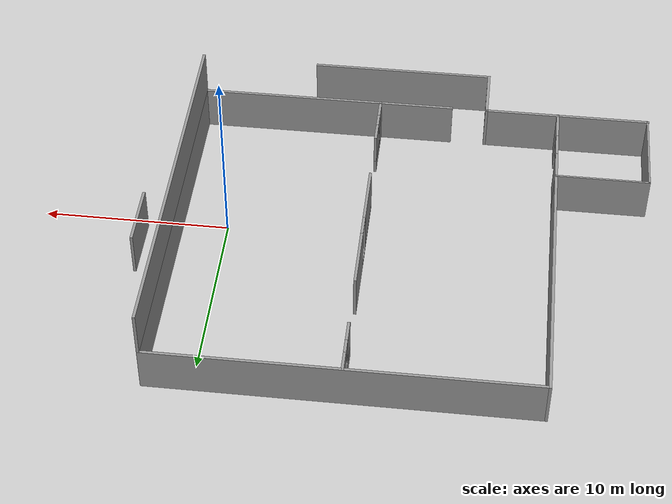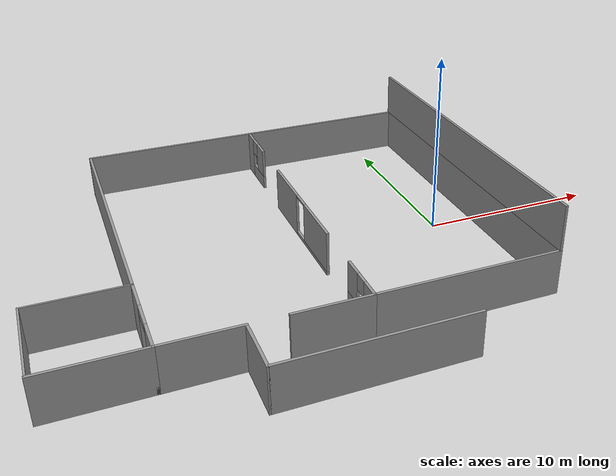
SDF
<sdf version="1.7">
 <model name="smart_house_3_working">
  <link name="Wall_11">
   <pose>-20.0155 -3.51553 0 0 -0 3.14159</pose>
   <inertial>
    <inertia><ixx>1</ixx><ixy>0</ixy><ixz>0</ixz><iyy>1</iyy><iyz>0</iyz><izz>1</izz></inertia>
    <mass>1</mass>
   </inertial>
   <visual name="Wall_11_Visual">
    <pose>0 0 1.25 0 -0 0</pose>
    <geometry><box><size>5.1 0.1 2.5</size></box></geometry>
    <material>
     <script><uri>file://media/materials/scripts/gazebo.material</uri><name>Gazebo/Grey</name></script>
     <ambient>1 1 1 1</ambient>
     <shader type="pixel"/>
    </material>
    <meta><layer>0</layer></meta>
   </visual>
   <collision name="Wall_11_Collision">
    <pose>0 0 1.25 0 -0 0</pose>
    <geometry><box><size>5.1 0.1 2.5</size></box></geometry>
    <surface>
     <friction>
      <ode><mu>1</mu><mu2>1</mu2><fdir1>0 0 0</fdir1><slip1>0</slip1><slip2>0</slip2></ode>
      <torsional>
       <coefficient>1</coefficient>
       <patch_radius>0</patch_radius>
       <surface_radius>0</surface_radius>
       <use_patch_radius>1</use_patch_radius>
       <ode><slip>0</slip></ode>
      </torsional>
     </friction>
     <bounce><restitution_coefficient>0</restitution_coefficient><threshold>1e+06</threshold></bounce>
     <contact>
      <collide_without_contact>0</collide_without_contact>
      <collide_without_contact_bitmask>1</collide_without_contact_bitmask>
      <collide_bitmask>1</collide_bitmask>
      <ode>
       <soft_cfm>0</soft_cfm>
       <soft_erp>0.2</soft_erp>
       <kp>1e+13</kp>
       <kd>1</kd>
       <max_vel>0.01</max_vel>
       <min_depth>0</min_depth>
      </ode>
      <bullet>
       <split_impulse>1</split_impulse>
       <split_impulse_penetration_threshold>-0.01</split_impulse_penetration_threshold>
       <soft_cfm>0</soft_cfm>
       <soft_erp>0.2</soft_erp>
       <kp>1e+13</kp>
       <kd>1</kd>
      </bullet>
     </contact>
    </surface>
   </collision>
  </link>
  <link name="Wall_12">
   <pose>-22.5155 -6.01553 0 0 0 -1.5708</pose>
   <inertial>
    <inertia><ixx>1</ixx><ixy>0</ixy><ixz>0</ixz><iyy>1</iyy><iyz>0</iyz><izz>1</izz></inertia>
    <mass>1</mass>
   </inertial>
   <visual name="Wall_12_Visual">
    <pose>0 0 1.25 0 -0 0</pose>
    <geometry><box><size>5.1 0.1 2.5</size></box></geometry>
    <material>
     <script><uri>file://media/materials/scripts/gazebo.material</uri><name>Gazebo/Grey</name></script>
     <ambient>1 1 1 1</ambient>
     <shader type="pixel"/>
    </material>
    <meta><layer>0</layer></meta>
   </visual>
   <collision name="Wall_12_Collision">
    <pose>0 0 1.25 0 -0 0</pose>
    <geometry><box><size>5.1 0.1 2.5</size></box></geometry>
    <surface>
     <friction>
      <ode><mu>1</mu><mu2>1</mu2><fdir1>0 0 0</fdir1><slip1>0</slip1><slip2>0</slip2></ode>
      <torsional>
       <coefficient>1</coefficient>
       <patch_radius>0</patch_radius>
       <surface_radius>0</surface_radius>
       <use_patch_radius>1</use_patch_radius>
       <ode><slip>0</slip></ode>
      </torsional>
     </friction>
     <bounce><restitution_coefficient>0</restitution_coefficient><threshold>1e+06</threshold></bounce>
     <contact>
      <collide_without_contact>0</collide_without_contact>
      <collide_without_contact_bitmask>1</collide_without_contact_bitmask>
      <collide_bitmask>1</collide_bitmask>
      <ode>
       <soft_cfm>0</soft_cfm>
       <soft_erp>0.2</soft_erp>
       <kp>1e+13</kp>
       <kd>1</kd>
       <max_vel>0.01</max_vel>
       <min_depth>0</min_depth>
      </ode>
      <bullet>
       <split_impulse>1</split_impulse>
       <split_impulse_penetration_threshold>-0.01</split_impulse_penetration_threshold>
       <soft_cfm>0</soft_cfm>
       <soft_erp>0.2</soft_erp>
       <kp>1e+13</kp>
       <kd>1</kd>
      </bullet>
     </contact>
    </surface>
   </collision>
  </link>
  <link name="Wall_14">
   <pose>2.48447 1.48447 0 0 -0 1.5708</pose>
   <inertial>
    <inertia><ixx>1</ixx><ixy>0</ixy><ixz>0</ixz><iyy>1</iyy><iyz>0</iyz><izz>1</izz></inertia>
    <mass>1</mass>
   </inertial>
   <visual name="Wall_14_Visual">
    <pose>0 0 1.25 0 -0 0</pose>
    <geometry><box><size>20.15 0.15 2.5</size></box></geometry>
    <material>
     <script><uri>file://media/materials/scripts/gazebo.material</uri><name>Gazebo/Grey</name></script>
     <ambient>1 1 1 1</ambient>
     <shader type="pixel"/>
    </material>
    <meta><layer>0</layer></meta>
   </visual>
   <collision name="Wall_14_Collision">
    <pose>0 0 1.25 0 -0 0</pose>
    <geometry><box><size>20.15 0.15 2.5</size></box></geometry>
    <surface>
     <friction>
      <ode><mu>1</mu><mu2>1</mu2><fdir1>0 0 0</fdir1><slip1>0</slip1><slip2>0</slip2></ode>
      <torsional>
       <coefficient>1</coefficient>
       <patch_radius>0</patch_radius>
       <surface_radius>0</surface_radius>
       <use_patch_radius>1</use_patch_radius>
       <ode><slip>0</slip></ode>
      </torsional>
     </friction>
     <bounce><restitution_coefficient>0</restitution_coefficient><threshold>1e+06</threshold></bounce>
     <contact>
      <collide_without_contact>0</collide_without_contact>
      <collide_without_contact_bitmask>1</collide_without_contact_bitmask>
      <collide_bitmask>1</collide_bitmask>
      <ode>
       <soft_cfm>0</soft_cfm>
       <soft_erp>0.2</soft_erp>
       <kp>1e+13</kp>
       <kd>1</kd>
       <max_vel>0.01</max_vel>
       <min_depth>0</min_depth>
      </ode>
      <bullet>
       <split_impulse>1</split_impulse>
       <split_impulse_penetration_threshold>-0.01</split_impulse_penetration_threshold>
       <soft_cfm>0</soft_cfm>
       <soft_erp>0.2</soft_erp>
       <kp>1e+13</kp>
       <kd>1</kd>
      </bullet>
     </contact>
    </surface>
   </collision>
  </link>
  <link name="Wall_15">
   <pose>-7.51553 11.4845 0 0 -0 3.14159</pose>
   <inertial>
    <inertia><ixx>1</ixx><ixy>0</ixy><ixz>0</ixz><iyy>1</iyy><iyz>0</iyz><izz>1</izz></inertia>
    <mass>1</mass>
   </inertial>
   <visual name="Wall_15_Visual">
    <pose>0 0 1.25 0 -0 0</pose>
    <geometry><box><size>20.15 0.15 2.5</size></box></geometry>
    <material>
     <script><uri>file://media/materials/scripts/gazebo.material</uri><name>Gazebo/Grey</name></script>
     <ambient>1 1 1 1</ambient>
     <shader type="pixel"/>
    </material>
    <meta><layer>0</layer></meta>
   </visual>
   <collision name="Wall_15_Collision">
    <pose>0 0 1.25 0 -0 0</pose>
    <geometry><box><size>20.15 0.15 2.5</size></box></geometry>
    <surface>
     <friction>
      <ode><mu>1</mu><mu2>1</mu2><fdir1>0 0 0</fdir1><slip1>0</slip1><slip2>0</slip2></ode>
      <torsional>
       <coefficient>1</coefficient>
       <patch_radius>0</patch_radius>
       <surface_radius>0</surface_radius>
       <use_patch_radius>1</use_patch_radius>
       <ode><slip>0</slip></ode>
      </torsional>
     </friction>
     <bounce><restitution_coefficient>0</restitution_coefficient><threshold>1e+06</threshold></bounce>
     <contact>
      <collide_without_contact>0</collide_without_contact>
      <collide_without_contact_bitmask>1</collide_without_contact_bitmask>
      <collide_bitmask>1</collide_bitmask>
      <ode>
       <soft_cfm>0</soft_cfm>
       <soft_erp>0.2</soft_erp>
       <kp>1e+13</kp>
       <kd>1</kd>
       <max_vel>0.01</max_vel>
       <min_depth>0</min_depth>
      </ode>
      <bullet>
       <split_impulse>1</split_impulse>
       <split_impulse_penetration_threshold>-0.01</split_impulse_penetration_threshold>
       <soft_cfm>0</soft_cfm>
       <soft_erp>0.2</soft_erp>
       <kp>1e+13</kp>
       <kd>1</kd>
      </bullet>
     </contact>
    </surface>
   </collision>
  </link>
  <link name="Wall_16">
   <pose>-17.5155 3.98447 0 0 0 -1.5708</pose>
   <inertial>
    <inertia><ixx>1</ixx><ixy>0</ixy><ixz>0</ixz><iyy>1</iyy><iyz>0</iyz><izz>1</izz></inertia>
    <mass>1</mass>
   </inertial>
   <visual name="Wall_16_Visual">
    <pose>0 0 1.25 0 -0 0</pose>
    <geometry><box><size>15.1503 0.15 2.5</size></box></geometry>
    <material>
     <script><uri>file://media/materials/scripts/gazebo.material</uri><name>Gazebo/Grey</name></script>
     <ambient>1 1 1 1</ambient>
     <shader type="pixel"/>
    </material>
    <meta><layer>0</layer></meta>
   </visual>
   <collision name="Wall_16_Collision">
    <pose>0 0 1.25 0 -0 0</pose>
    <geometry><box><size>15.1503 0.15 2.5</size></box></geometry>
    <surface>
     <friction>
      <ode><mu>1</mu><mu2>1</mu2><fdir1>0 0 0</fdir1><slip1>0</slip1><slip2>0</slip2></ode>
      <torsional>
       <coefficient>1</coefficient>
       <patch_radius>0</patch_radius>
       <surface_radius>0</surface_radius>
       <use_patch_radius>1</use_patch_radius>
       <ode><slip>0</slip></ode>
      </torsional>
     </friction>
     <bounce><restitution_coefficient>0</restitution_coefficient><threshold>1e+06</threshold></bounce>
     <contact>
      <collide_without_contact>0</collide_without_contact>
      <collide_without_contact_bitmask>1</collide_without_contact_bitmask>
      <collide_bitmask>1</collide_bitmask>
      <ode>
       <soft_cfm>0</soft_cfm>
       <soft_erp>0.2</soft_erp>
       <kp>1e+13</kp>
       <kd>1</kd>
       <max_vel>0.01</max_vel>
       <min_depth>0</min_depth>
      </ode>
      <bullet>
       <split_impulse>1</split_impulse>
       <split_impulse_penetration_threshold>-0.01</split_impulse_penetration_threshold>
       <soft_cfm>0</soft_cfm>
       <soft_erp>0.2</soft_erp>
       <kp>1e+13</kp>
       <kd>1</kd>
      </bullet>
     </contact>
    </surface>
   </collision>
  </link>
  <link name="Wall_234">
   <pose>2.48447 1.48447 2.5 0 -0 1.5708</pose>
   <inertial>
    <inertia><ixx>1</ixx><ixy>0</ixy><ixz>0</ixz><iyy>1</iyy><iyz>0</iyz><izz>1</izz></inertia>
    <mass>1</mass>
   </inertial>
   <visual name="Wall_234_Visual">
    <pose>0 0 1.25 0 -0 0</pose>
    <geometry><box><size>20.15 0.15 2.5</size></box></geometry>
    <material>
     <script><uri>file://media/materials/scripts/gazebo.material</uri><name>Gazebo/Grey</name></script>
     <ambient>1 1 1 1</ambient>
     <shader type="pixel"/>
    </material>
    <meta><layer>2</layer></meta>
   </visual>
   <collision name="Wall_234_Collision">
    <pose>0 0 1.25 0 -0 0</pose>
    <geometry><box><size>20.15 0.15 2.5</size></box></geometry>
    <surface>
     <friction>
      <ode><mu>1</mu><mu2>1</mu2><fdir1>0 0 0</fdir1><slip1>0</slip1><slip2>0</slip2></ode>
      <torsional>
       <coefficient>1</coefficient>
       <patch_radius>0</patch_radius>
       <surface_radius>0</surface_radius>
       <use_patch_radius>1</use_patch_radius>
       <ode><slip>0</slip></ode>
      </torsional>
     </friction>
     <bounce><restitution_coefficient>0</restitution_coefficient><threshold>1e+06</threshold></bounce>
     <contact>
      <collide_without_contact>0</collide_without_contact>
      <collide_without_contact_bitmask>1</collide_without_contact_bitmask>
      <collide_bitmask>1</collide_bitmask>
      <ode>
       <soft_cfm>0</soft_cfm>
       <soft_erp>0.2</soft_erp>
       <kp>1e+13</kp>
       <kd>1</kd>
       <max_vel>0.01</max_vel>
       <min_depth>0</min_depth>
      </ode>
      <bullet>
       <split_impulse>1</split_impulse>
       <split_impulse_penetration_threshold>-0.01</split_impulse_penetration_threshold>
       <soft_cfm>0</soft_cfm>
       <soft_erp>0.2</soft_erp>
       <kp>1e+13</kp>
       <kd>1</kd>
      </bullet>
     </contact>
    </surface>
   </collision>
  </link>
  <link name="Wall_24">
   <pose>-17.5155 -6.01553 0 0 0 -1.5708</pose>
   <inertial>
    <inertia><ixx>1</ixx><ixy>0</ixy><ixz>0</ixz><iyy>1</iyy><iyz>0</iyz><izz>1</izz></inertia>
    <mass>1</mass>
   </inertial>
   <visual name="Wall_24_Visual_0">
    <pose>-1.63657 0 1.25 0 -0 0</pose>
    <geometry><box><size>1.87687 0.15 2.5</size></box></geometry>
    <material>
     <script><uri>file://media/materials/scripts/gazebo.material</uri><name>Gazebo/Grey</name></script>
     <ambient>1 1 1 1</ambient>
     <shader type="pixel"/>
    </material>
    <meta><layer>0</layer></meta>
   </visual>
   <visual name="Wall_24_Visual_2">
    <pose>0.051866 0 2.25 0 -0 0</pose>
    <geometry><box><size>1.5 0.15 0.5</size></box></geometry>
    <material>
     <script><uri>file://media/materials/scripts/gazebo.material</uri><name>Gazebo/Grey</name></script>
     <ambient>1 1 1 1</ambient>
     <shader type="pixel"/>
    </material>
    <meta><layer>0</layer></meta>
   </visual>
   <visual name="Wall_24_Visual_1">
    <pose>1.68843 0 1.25 0 -0 0</pose>
    <geometry><box><size>1.77313 0.15 2.5</size></box></geometry>
    <material>
     <script><uri>file://media/materials/scripts/gazebo.material</uri><name>Gazebo/Grey</name></script>
     <ambient>1 1 1 1</ambient>
     <shader type="pixel"/>
    </material>
    <meta><layer>0</layer></meta>
   </visual>
   <collision name="Wall_24_Collision_2">
    <pose>0.051866 0 2.25 0 -0 0</pose>
    <geometry><box><size>1.5 0.15 0.5</size></box></geometry>
    <surface>
     <friction>
      <ode><mu>1</mu><mu2>1</mu2><fdir1>0 0 0</fdir1><slip1>0</slip1><slip2>0</slip2></ode>
      <torsional>
       <coefficient>1</coefficient>
       <patch_radius>0</patch_radius>
       <surface_radius>0</surface_radius>
       <use_patch_radius>1</use_patch_radius>
       <ode><slip>0</slip></ode>
      </torsional>
     </friction>
     <bounce><restitution_coefficient>0</restitution_coefficient><threshold>1e+06</threshold></bounce>
     <contact>
      <collide_without_contact>0</collide_without_contact>
      <collide_without_contact_bitmask>1</collide_without_contact_bitmask>
      <collide_bitmask>1</collide_bitmask>
      <ode>
       <soft_cfm>0</soft_cfm>
       <soft_erp>0.2</soft_erp>
       <kp>1e+13</kp>
       <kd>1</kd>
       <max_vel>0.01</max_vel>
       <min_depth>0</min_depth>
      </ode>
      <bullet>
       <split_impulse>1</split_impulse>
       <split_impulse_penetration_threshold>-0.01</split_impulse_penetration_threshold>
       <soft_cfm>0</soft_cfm>
       <soft_erp>0.2</soft_erp>
       <kp>1e+13</kp>
       <kd>1</kd>
      </bullet>
     </contact>
    </surface>
   </collision>
   <collision name="Wall_24_Collision_1">
    <pose>1.68843 0 1.25 0 -0 0</pose>
    <geometry><box><size>1.77313 0.15 2.5</size></box></geometry>
    <surface>
     <friction>
      <ode><mu>1</mu><mu2>1</mu2><fdir1>0 0 0</fdir1><slip1>0</slip1><slip2>0</slip2></ode>
      <torsional>
       <coefficient>1</coefficient>
       <patch_radius>0</patch_radius>
       <surface_radius>0</surface_radius>
       <use_patch_radius>1</use_patch_radius>
       <ode><slip>0</slip></ode>
      </torsional>
     </friction>
     <bounce><restitution_coefficient>0</restitution_coefficient><threshold>1e+06</threshold></bounce>
     <contact>
      <collide_without_contact>0</collide_without_contact>
      <collide_without_contact_bitmask>1</collide_without_contact_bitmask>
      <collide_bitmask>1</collide_bitmask>
      <ode>
       <soft_cfm>0</soft_cfm>
       <soft_erp>0.2</soft_erp>
       <kp>1e+13</kp>
       <kd>1</kd>
       <max_vel>0.01</max_vel>
       <min_depth>0</min_depth>
      </ode>
      <bullet>
       <split_impulse>1</split_impulse>
       <split_impulse_penetration_threshold>-0.01</split_impulse_penetration_threshold>
       <soft_cfm>0</soft_cfm>
       <soft_erp>0.2</soft_erp>
       <kp>1e+13</kp>
       <kd>1</kd>
      </bullet>
     </contact>
    </surface>
   </collision>
   <collision name="Wall_24_Collision_0">
    <pose>-1.63657 0 1.25 0 -0 0</pose>
    <geometry><box><size>1.87687 0.15 2.5</size></box></geometry>
    <surface>
     <friction>
      <ode><mu>1</mu><mu2>1</mu2><fdir1>0 0 0</fdir1><slip1>0</slip1><slip2>0</slip2></ode>
      <torsional>
       <coefficient>1</coefficient>
       <patch_radius>0</patch_radius>
       <surface_radius>0</surface_radius>
       <use_patch_radius>1</use_patch_radius>
       <ode><slip>0</slip></ode>
      </torsional>
     </friction>
     <bounce><restitution_coefficient>0</restitution_coefficient><threshold>1e+06</threshold></bounce>
     <contact>
      <collide_without_contact>0</collide_without_contact>
      <collide_without_contact_bitmask>1</collide_without_contact_bitmask>
      <collide_bitmask>1</collide_bitmask>
      <ode>
       <soft_cfm>0</soft_cfm>
       <soft_erp>0.2</soft_erp>
       <kp>1e+13</kp>
       <kd>1</kd>
       <max_vel>0.01</max_vel>
       <min_depth>0</min_depth>
      </ode>
      <bullet>
       <split_impulse>1</split_impulse>
       <split_impulse_penetration_threshold>-0.01</split_impulse_penetration_threshold>
       <soft_cfm>0</soft_cfm>
       <soft_erp>0.2</soft_erp>
       <kp>1e+13</kp>
       <kd>1</kd>
      </bullet>
     </contact>
    </surface>
   </collision>
  </link>
  <link name="Wall_40">
   <pose>-20.0155 -8.51553 0 0 -0 0</pose>
   <inertial>
    <inertia><ixx>1</ixx><ixy>0</ixy><ixz>0</ixz><iyy>1</iyy><iyz>0</iyz><izz>1</izz></inertia>
    <mass>1</mass>
   </inertial>
   <visual name="Wall_40_Visual">
    <pose>0 0 1.25 0 -0 0</pose>
    <geometry><box><size>5.15 0.15 2.5</size></box></geometry>
    <material>
     <script><uri>file://media/materials/scripts/gazebo.material</uri><name>Gazebo/Grey</name></script>
     <ambient>1 1 1 1</ambient>
     <shader type="pixel"/>
    </material>
    <meta><layer>0</layer></meta>
   </visual>
   <collision name="Wall_40_Collision">
    <pose>0 0 1.25 0 -0 0</pose>
    <geometry><box><size>5.15 0.15 2.5</size></box></geometry>
    <surface>
     <friction>
      <ode><mu>1</mu><mu2>1</mu2><fdir1>0 0 0</fdir1><slip1>0</slip1><slip2>0</slip2></ode>
      <torsional>
       <coefficient>1</coefficient>
       <patch_radius>0</patch_radius>
       <surface_radius>0</surface_radius>
       <use_patch_radius>1</use_patch_radius>
       <ode><slip>0</slip></ode>
      </torsional>
     </friction>
     <bounce><restitution_coefficient>0</restitution_coefficient><threshold>1e+06</threshold></bounce>
     <contact>
      <collide_without_contact>0</collide_without_contact>
      <collide_without_contact_bitmask>1</collide_without_contact_bitmask>
      <collide_bitmask>1</collide_bitmask>
      <ode>
       <soft_cfm>0</soft_cfm>
       <soft_erp>0.2</soft_erp>
       <kp>1e+13</kp>
       <kd>1</kd>
       <max_vel>0.01</max_vel>
       <min_depth>0</min_depth>
      </ode>
      <bullet>
       <split_impulse>1</split_impulse>
       <split_impulse_penetration_threshold>-0.01</split_impulse_penetration_threshold>
       <soft_cfm>0</soft_cfm>
       <soft_erp>0.2</soft_erp>
       <kp>1e+13</kp>
       <kd>1</kd>
      </bullet>
     </contact>
    </surface>
   </collision>
  </link>
  <link name="Wall_42">
   <pose>-2.51553 -8.51553 0 0 -0 3.14159</pose>
   <inertial>
    <inertia><ixx>1</ixx><ixy>0</ixy><ixz>0</ixz><iyy>1</iyy><iyz>0</iyz><izz>1</izz></inertia>
    <mass>1</mass>
   </inertial>
   <visual name="Wall_42_Visual">
    <pose>0 0 1.25 0 -0 0</pose>
    <geometry><box><size>10.15 0.15 2.5</size></box></geometry>
    <material>
     <script><uri>file://media/materials/scripts/gazebo.material</uri><name>Gazebo/Grey</name></script>
     <ambient>1 1 1 1</ambient>
     <shader type="pixel"/>
    </material>
    <meta><layer>0</layer></meta>
   </visual>
   <collision name="Wall_42_Collision">
    <pose>0 0 1.25 0 -0 0</pose>
    <geometry><box><size>10.15 0.15 2.5</size></box></geometry>
    <surface>
     <friction>
      <ode><mu>1</mu><mu2>1</mu2><fdir1>0 0 0</fdir1><slip1>0</slip1><slip2>0</slip2></ode>
      <torsional>
       <coefficient>1</coefficient>
       <patch_radius>0</patch_radius>
       <surface_radius>0</surface_radius>
       <use_patch_radius>1</use_patch_radius>
       <ode><slip>0</slip></ode>
      </torsional>
     </friction>
     <bounce><restitution_coefficient>0</restitution_coefficient><threshold>1e+06</threshold></bounce>
     <contact>
      <collide_without_contact>0</collide_without_contact>
      <collide_without_contact_bitmask>1</collide_without_contact_bitmask>
      <collide_bitmask>1</collide_bitmask>
      <ode>
       <soft_cfm>0</soft_cfm>
       <soft_erp>0.2</soft_erp>
       <kp>1e+13</kp>
       <kd>1</kd>
       <max_vel>0.01</max_vel>
       <min_depth>0</min_depth>
      </ode>
      <bullet>
       <split_impulse>1</split_impulse>
       <split_impulse_penetration_threshold>-0.01</split_impulse_penetration_threshold>
       <soft_cfm>0</soft_cfm>
       <soft_erp>0.2</soft_erp>
       <kp>1e+13</kp>
       <kd>1</kd>
      </bullet>
     </contact>
    </surface>
   </collision>
  </link>
  <link name="Wall_44">
   <pose>-15.5155 -8.51553 0 0 -0 0</pose>
   <inertial>
    <inertia><ixx>1</ixx><ixy>0</ixy><ixz>0</ixz><iyy>1</iyy><iyz>0</iyz><izz>1</izz></inertia>
    <mass>1</mass>
   </inertial>
   <visual name="Wall_44_Visual">
    <pose>0 0 1.25 0 -0 0</pose>
    <geometry><box><size>4.15 0.15 2.5</size></box></geometry>
    <material>
     <script><uri>file://media/materials/scripts/gazebo.material</uri><name>Gazebo/Grey</name></script>
     <ambient>1 1 1 1</ambient>
     <shader type="pixel"/>
    </material>
    <meta><layer>0</layer></meta>
   </visual>
   <collision name="Wall_44_Collision">
    <pose>0 0 1.25 0 -0 0</pose>
    <geometry><box><size>4.15 0.15 2.5</size></box></geometry>
    <surface>
     <friction>
      <ode><mu>1</mu><mu2>1</mu2><fdir1>0 0 0</fdir1><slip1>0</slip1><slip2>0</slip2></ode>
      <torsional>
       <coefficient>1</coefficient>
       <patch_radius>0</patch_radius>
       <surface_radius>0</surface_radius>
       <use_patch_radius>1</use_patch_radius>
       <ode><slip>0</slip></ode>
      </torsional>
     </friction>
     <bounce><restitution_coefficient>0</restitution_coefficient><threshold>1e+06</threshold></bounce>
     <contact>
      <collide_without_contact>0</collide_without_contact>
      <collide_without_contact_bitmask>1</collide_without_contact_bitmask>
      <collide_bitmask>1</collide_bitmask>
      <ode>
       <soft_cfm>0</soft_cfm>
       <soft_erp>0.2</soft_erp>
       <kp>1e+13</kp>
       <kd>1</kd>
       <max_vel>0.01</max_vel>
       <min_depth>0</min_depth>
      </ode>
      <bullet>
       <split_impulse>1</split_impulse>
       <split_impulse_penetration_threshold>-0.01</split_impulse_penetration_threshold>
       <soft_cfm>0</soft_cfm>
       <soft_erp>0.2</soft_erp>
       <kp>1e+13</kp>
       <kd>1</kd>
      </bullet>
     </contact>
    </surface>
   </collision>
  </link>
  <link name="Wall_46">
   <pose>-9.51553 -8.51553 0 0 -0 3.14159</pose>
   <inertial>
    <inertia><ixx>1</ixx><ixy>0</ixy><ixz>0</ixz><iyy>1</iyy><iyz>0</iyz><izz>1</izz></inertia>
    <mass>1</mass>
   </inertial>
   <visual name="Wall_46_Visual">
    <pose>0 0 1.25 0 -0 0</pose>
    <geometry><box><size>4.15 0.15 2.5</size></box></geometry>
    <material>
     <script><uri>file://media/materials/scripts/gazebo.material</uri><name>Gazebo/Grey</name></script>
     <ambient>1 1 1 1</ambient>
     <shader type="pixel"/>
    </material>
    <meta><layer>0</layer></meta>
   </visual>
   <collision name="Wall_46_Collision">
    <pose>0 0 1.25 0 -0 0</pose>
    <geometry><box><size>4.15 0.15 2.5</size></box></geometry>
    <surface>
     <friction>
      <ode><mu>1</mu><mu2>1</mu2><fdir1>0 0 0</fdir1><slip1>0</slip1><slip2>0</slip2></ode>
      <torsional>
       <coefficient>1</coefficient>
       <patch_radius>0</patch_radius>
       <surface_radius>0</surface_radius>
       <use_patch_radius>1</use_patch_radius>
       <ode><slip>0</slip></ode>
      </torsional>
     </friction>
     <bounce><restitution_coefficient>0</restitution_coefficient><threshold>1e+06</threshold></bounce>
     <contact>
      <collide_without_contact>0</collide_without_contact>
      <collide_without_contact_bitmask>1</collide_without_contact_bitmask>
      <collide_bitmask>1</collide_bitmask>
      <ode>
       <soft_cfm>0</soft_cfm>
       <soft_erp>0.2</soft_erp>
       <kp>1e+13</kp>
       <kd>1</kd>
       <max_vel>0.01</max_vel>
       <min_depth>0</min_depth>
      </ode>
      <bullet>
       <split_impulse>1</split_impulse>
       <split_impulse_penetration_threshold>-0.01</split_impulse_penetration_threshold>
       <soft_cfm>0</soft_cfm>
       <soft_erp>0.2</soft_erp>
       <kp>1e+13</kp>
       <kd>1</kd>
      </bullet>
     </contact>
    </surface>
   </collision>
  </link>
  <link name="Wall_48">
   <pose>-7.51553 -7.01553 0 0 -0 1.5708</pose>
   <inertial>
    <inertia><ixx>1</ixx><ixy>0</ixy><ixz>0</ixz><iyy>1</iyy><iyz>0</iyz><izz>1</izz></inertia>
    <mass>1</mass>
   </inertial>
   <visual name="Wall_48_Visual_3">
    <pose>-0 0 2.05 0 -0 0</pose>
    <geometry><box><size>0.8 0.15 0.9</size></box></geometry>
    <material>
     <script><uri>file://media/materials/scripts/gazebo.material</uri><name>Gazebo/Grey</name></script>
     <ambient>1 1 1 1</ambient>
     <shader type="pixel"/>
    </material>
    <meta><layer>0</layer></meta>
   </visual>
   <visual name="Wall_48_Visual_2">
    <pose>0.9875 0 1.65 0 -0 0</pose>
    <geometry><box><size>1.175 0.15 1.7</size></box></geometry>
    <material>
     <script><uri>file://media/materials/scripts/gazebo.material</uri><name>Gazebo/Grey</name></script>
     <ambient>1 1 1 1</ambient>
     <shader type="pixel"/>
    </material>
    <meta><layer>0</layer></meta>
   </visual>
   <visual name="Wall_48_Visual_1">
    <pose>0.5875 0 0.4 0 -0 0</pose>
    <geometry><box><size>1.975 0.15 0.8</size></box></geometry>
    <material>
     <script><uri>file://media/materials/scripts/gazebo.material</uri><name>Gazebo/Grey</name></script>
     <ambient>1 1 1 1</ambient>
     <shader type="pixel"/>
    </material>
    <meta><layer>0</layer></meta>
   </visual>
   <visual name="Wall_48_Visual_0">
    <pose>-0.9875 0 1.25 0 -0 0</pose>
    <geometry><box><size>1.175 0.15 2.5</size></box></geometry>
    <material>
     <script><uri>file://media/materials/scripts/gazebo.material</uri><name>Gazebo/Grey</name></script>
     <ambient>1 1 1 1</ambient>
     <shader type="pixel"/>
    </material>
    <meta><layer>0</layer></meta>
   </visual>
   <collision name="Wall_48_Collision_3">
    <pose>0 0 2.05 0 -0 0</pose>
    <geometry><box><size>0.8 0.15 0.9</size></box></geometry>
    <surface>
     <friction>
      <ode><mu>1</mu><mu2>1</mu2><fdir1>0 0 0</fdir1><slip1>0</slip1><slip2>0</slip2></ode>
      <torsional>
       <coefficient>1</coefficient>
       <patch_radius>0</patch_radius>
       <surface_radius>0</surface_radius>
       <use_patch_radius>1</use_patch_radius>
       <ode><slip>0</slip></ode>
      </torsional>
     </friction>
     <bounce><restitution_coefficient>0</restitution_coefficient><threshold>1e+06</threshold></bounce>
     <contact>
      <collide_without_contact>0</collide_without_contact>
      <collide_without_contact_bitmask>1</collide_without_contact_bitmask>
      <collide_bitmask>1</collide_bitmask>
      <ode>
       <soft_cfm>0</soft_cfm>
       <soft_erp>0.2</soft_erp>
       <kp>1e+13</kp>
       <kd>1</kd>
       <max_vel>0.01</max_vel>
       <min_depth>0</min_depth>
      </ode>
      <bullet>
       <split_impulse>1</split_impulse>
       <split_impulse_penetration_threshold>-0.01</split_impulse_penetration_threshold>
       <soft_cfm>0</soft_cfm>
       <soft_erp>0.2</soft_erp>
       <kp>1e+13</kp>
       <kd>1</kd>
      </bullet>
     </contact>
    </surface>
   </collision>
   <collision name="Wall_48_Collision_2">
    <pose>0.9875 0 1.65 0 -0 0</pose>
    <geometry><box><size>1.175 0.15 1.7</size></box></geometry>
    <surface>
     <friction>
      <ode><mu>1</mu><mu2>1</mu2><fdir1>0 0 0</fdir1><slip1>0</slip1><slip2>0</slip2></ode>
      <torsional>
       <coefficient>1</coefficient>
       <patch_radius>0</patch_radius>
       <surface_radius>0</surface_radius>
       <use_patch_radius>1</use_patch_radius>
       <ode><slip>0</slip></ode>
      </torsional>
     </friction>
     <bounce><restitution_coefficient>0</restitution_coefficient><threshold>1e+06</threshold></bounce>
     <contact>
      <collide_without_contact>0</collide_without_contact>
      <collide_without_contact_bitmask>1</collide_without_contact_bitmask>
      <collide_bitmask>1</collide_bitmask>
      <ode>
       <soft_cfm>0</soft_cfm>
       <soft_erp>0.2</soft_erp>
       <kp>1e+13</kp>
       <kd>1</kd>
       <max_vel>0.01</max_vel>
       <min_depth>0</min_depth>
      </ode>
      <bullet>
       <split_impulse>1</split_impulse>
       <split_impulse_penetration_threshold>-0.01</split_impulse_penetration_threshold>
       <soft_cfm>0</soft_cfm>
       <soft_erp>0.2</soft_erp>
       <kp>1e+13</kp>
       <kd>1</kd>
      </bullet>
     </contact>
    </surface>
   </collision>
   <collision name="Wall_48_Collision_1">
    <pose>0.5875 0 0.4 0 -0 0</pose>
    <geometry><box><size>1.975 0.15 0.8</size></box></geometry>
    <surface>
     <friction>
      <ode><mu>1</mu><mu2>1</mu2><fdir1>0 0 0</fdir1><slip1>0</slip1><slip2>0</slip2></ode>
      <torsional>
       <coefficient>1</coefficient>
       <patch_radius>0</patch_radius>
       <surface_radius>0</surface_radius>
       <use_patch_radius>1</use_patch_radius>
       <ode><slip>0</slip></ode>
      </torsional>
     </friction>
     <bounce><restitution_coefficient>0</restitution_coefficient><threshold>1e+06</threshold></bounce>
     <contact>
      <collide_without_contact>0</collide_without_contact>
      <collide_without_contact_bitmask>1</collide_without_contact_bitmask>
      <collide_bitmask>1</collide_bitmask>
      <ode>
       <soft_cfm>0</soft_cfm>
       <soft_erp>0.2</soft_erp>
       <kp>1e+13</kp>
       <kd>1</kd>
       <max_vel>0.01</max_vel>
       <min_depth>0</min_depth>
      </ode>
      <bullet>
       <split_impulse>1</split_impulse>
       <split_impulse_penetration_threshold>-0.01</split_impulse_penetration_threshold>
       <soft_cfm>0</soft_cfm>
       <soft_erp>0.2</soft_erp>
       <kp>1e+13</kp>
       <kd>1</kd>
      </bullet>
     </contact>
    </surface>
   </collision>
   <collision name="Wall_48_Collision_0">
    <pose>-0.9875 0 1.25 0 -0 0</pose>
    <geometry><box><size>1.175 0.15 2.5</size></box></geometry>
    <surface>
     <friction>
      <ode><mu>1</mu><mu2>1</mu2><fdir1>0 0 0</fdir1><slip1>0</slip1><slip2>0</slip2></ode>
      <torsional>
       <coefficient>1</coefficient>
       <patch_radius>0</patch_radius>
       <surface_radius>0</surface_radius>
       <use_patch_radius>1</use_patch_radius>
       <ode><slip>0</slip></ode>
      </torsional>
     </friction>
     <bounce><restitution_coefficient>0</restitution_coefficient><threshold>1e+06</threshold></bounce>
     <contact>
      <collide_without_contact>0</collide_without_contact>
      <collide_without_contact_bitmask>1</collide_without_contact_bitmask>
      <collide_bitmask>1</collide_bitmask>
      <ode>
       <soft_cfm>0</soft_cfm>
       <soft_erp>0.2</soft_erp>
       <kp>1e+13</kp>
       <kd>1</kd>
       <max_vel>0.01</max_vel>
       <min_depth>0</min_depth>
      </ode>
      <bullet>
       <split_impulse>1</split_impulse>
       <split_impulse_penetration_threshold>-0.01</split_impulse_penetration_threshold>
       <soft_cfm>0</soft_cfm>
       <soft_erp>0.2</soft_erp>
       <kp>1e+13</kp>
       <kd>1</kd>
      </bullet>
     </contact>
    </surface>
   </collision>
  </link>
  <link name="Wall_50">
   <pose>-7.51553 9.98447 0 0 0 -1.5708</pose>
   <inertial>
    <inertia><ixx>1</ixx><ixy>0</ixy><ixz>0</ixz><iyy>1</iyy><iyz>0</iyz><izz>1</izz></inertia>
    <mass>1</mass>
   </inertial>
   <visual name="Wall_50_Visual_0">
    <pose>-0.9875 0 1.25 0 -0 0</pose>
    <geometry><box><size>1.175 0.15 2.5</size></box></geometry>
    <material>
     <script><uri>file://media/materials/scripts/gazebo.material</uri><name>Gazebo/Grey</name></script>
     <ambient>1 1 1 1</ambient>
     <shader type="pixel"/>
    </material>
    <meta><layer>0</layer></meta>
   </visual>
   <visual name="Wall_50_Visual_2">
    <pose>0.9875 0 1.65 0 -0 0</pose>
    <geometry><box><size>1.175 0.15 1.7</size></box></geometry>
    <material>
     <script><uri>file://media/materials/scripts/gazebo.material</uri><name>Gazebo/Grey</name></script>
     <ambient>1 1 1 1</ambient>
     <shader type="pixel"/>
    </material>
    <meta><layer>0</layer></meta>
   </visual>
   <visual name="Wall_50_Visual_1">
    <pose>0.5875 0 0.4 0 -0 0</pose>
    <geometry><box><size>1.975 0.15 0.8</size></box></geometry>
    <material>
     <script><uri>file://media/materials/scripts/gazebo.material</uri><name>Gazebo/Grey</name></script>
     <ambient>1 1 1 1</ambient>
     <shader type="pixel"/>
    </material>
    <meta><layer>0</layer></meta>
   </visual>
   <visual name="Wall_50_Visual_3">
    <pose>-0 0 2.05 0 -0 0</pose>
    <geometry><box><size>0.8 0.15 0.9</size></box></geometry>
    <material>
     <script><uri>file://media/materials/scripts/gazebo.material</uri><name>Gazebo/Grey</name></script>
     <ambient>1 1 1 1</ambient>
     <shader type="pixel"/>
    </material>
    <meta><layer>0</layer></meta>
   </visual>
   <collision name="Wall_50_Collision_0">
    <pose>-0.9875 0 1.25 0 -0 0</pose>
    <geometry><box><size>1.175 0.15 2.5</size></box></geometry>
    <surface>
     <friction>
      <ode><mu>1</mu><mu2>1</mu2><fdir1>0 0 0</fdir1><slip1>0</slip1><slip2>0</slip2></ode>
      <torsional>
       <coefficient>1</coefficient>
       <patch_radius>0</patch_radius>
       <surface_radius>0</surface_radius>
       <use_patch_radius>1</use_patch_radius>
       <ode><slip>0</slip></ode>
      </torsional>
     </friction>
     <bounce><restitution_coefficient>0</restitution_coefficient><threshold>1e+06</threshold></bounce>
     <contact>
      <collide_without_contact>0</collide_without_contact>
      <collide_without_contact_bitmask>1</collide_without_contact_bitmask>
      <collide_bitmask>1</collide_bitmask>
      <ode>
       <soft_cfm>0</soft_cfm>
       <soft_erp>0.2</soft_erp>
       <kp>1e+13</kp>
       <kd>1</kd>
       <max_vel>0.01</max_vel>
       <min_depth>0</min_depth>
      </ode>
      <bullet>
       <split_impulse>1</split_impulse>
       <split_impulse_penetration_threshold>-0.01</split_impulse_penetration_threshold>
       <soft_cfm>0</soft_cfm>
       <soft_erp>0.2</soft_erp>
       <kp>1e+13</kp>
       <kd>1</kd>
      </bullet>
     </contact>
    </surface>
   </collision>
   <collision name="Wall_50_Collision_1">
    <pose>0.5875 0 0.4 0 -0 0</pose>
    <geometry><box><size>1.975 0.15 0.8</size></box></geometry>
    <surface>
     <friction>
      <ode><mu>1</mu><mu2>1</mu2><fdir1>0 0 0</fdir1><slip1>0</slip1><slip2>0</slip2></ode>
      <torsional>
       <coefficient>1</coefficient>
       <patch_radius>0</patch_radius>
       <surface_radius>0</surface_radius>
       <use_patch_radius>1</use_patch_radius>
       <ode><slip>0</slip></ode>
      </torsional>
     </friction>
     <bounce><restitution_coefficient>0</restitution_coefficient><threshold>1e+06</threshold></bounce>
     <contact>
      <collide_without_contact>0</collide_without_contact>
      <collide_without_contact_bitmask>1</collide_without_contact_bitmask>
      <collide_bitmask>1</collide_bitmask>
      <ode>
       <soft_cfm>0</soft_cfm>
       <soft_erp>0.2</soft_erp>
       <kp>1e+13</kp>
       <kd>1</kd>
       <max_vel>0.01</max_vel>
       <min_depth>0</min_depth>
      </ode>
      <bullet>
       <split_impulse>1</split_impulse>
       <split_impulse_penetration_threshold>-0.01</split_impulse_penetration_threshold>
       <soft_cfm>0</soft_cfm>
       <soft_erp>0.2</soft_erp>
       <kp>1e+13</kp>
       <kd>1</kd>
      </bullet>
     </contact>
    </surface>
   </collision>
   <collision name="Wall_50_Collision_3">
    <pose>0 0 2.05 0 -0 0</pose>
    <geometry><box><size>0.8 0.15 0.9</size></box></geometry>
    <surface>
     <friction>
      <ode><mu>1</mu><mu2>1</mu2><fdir1>0 0 0</fdir1><slip1>0</slip1><slip2>0</slip2></ode>
      <torsional>
       <coefficient>1</coefficient>
       <patch_radius>0</patch_radius>
       <surface_radius>0</surface_radius>
       <use_patch_radius>1</use_patch_radius>
       <ode><slip>0</slip></ode>
      </torsional>
     </friction>
     <bounce><restitution_coefficient>0</restitution_coefficient><threshold>1e+06</threshold></bounce>
     <contact>
      <collide_without_contact>0</collide_without_contact>
      <collide_without_contact_bitmask>1</collide_without_contact_bitmask>
      <collide_bitmask>1</collide_bitmask>
      <ode>
       <soft_cfm>0</soft_cfm>
       <soft_erp>0.2</soft_erp>
       <kp>1e+13</kp>
       <kd>1</kd>
       <max_vel>0.01</max_vel>
       <min_depth>0</min_depth>
      </ode>
      <bullet>
       <split_impulse>1</split_impulse>
       <split_impulse_penetration_threshold>-0.01</split_impulse_penetration_threshold>
       <soft_cfm>0</soft_cfm>
       <soft_erp>0.2</soft_erp>
       <kp>1e+13</kp>
       <kd>1</kd>
      </bullet>
     </contact>
    </surface>
   </collision>
   <collision name="Wall_50_Collision_2">
    <pose>0.9875 0 1.65 0 -0 0</pose>
    <geometry><box><size>1.175 0.15 1.7</size></box></geometry>
    <surface>
     <friction>
      <ode><mu>1</mu><mu2>1</mu2><fdir1>0 0 0</fdir1><slip1>0</slip1><slip2>0</slip2></ode>
      <torsional>
       <coefficient>1</coefficient>
       <patch_radius>0</patch_radius>
       <surface_radius>0</surface_radius>
       <use_patch_radius>1</use_patch_radius>
       <ode><slip>0</slip></ode>
      </torsional>
     </friction>
     <bounce><restitution_coefficient>0</restitution_coefficient><threshold>1e+06</threshold></bounce>
     <contact>
      <collide_without_contact>0</collide_without_contact>
      <collide_without_contact_bitmask>1</collide_without_contact_bitmask>
      <collide_bitmask>1</collide_bitmask>
      <ode>
       <soft_cfm>0</soft_cfm>
       <soft_erp>0.2</soft_erp>
       <kp>1e+13</kp>
       <kd>1</kd>
       <max_vel>0.01</max_vel>
       <min_depth>0</min_depth>
      </ode>
      <bullet>
       <split_impulse>1</split_impulse>
       <split_impulse_penetration_threshold>-0.01</split_impulse_penetration_threshold>
       <soft_cfm>0</soft_cfm>
       <soft_erp>0.2</soft_erp>
       <kp>1e+13</kp>
       <kd>1</kd>
      </bullet>
     </contact>
    </surface>
   </collision>
  </link>
  <link name="Wall_52">
   <pose>-7.51553 1.48447 0 0 0 -1.5708</pose>
   <inertial>
    <inertia><ixx>1</ixx><ixy>0</ixy><ixz>0</ixz><iyy>1</iyy><iyz>0</iyz><izz>1</izz></inertia>
    <mass>1</mass>
   </inertial>
   <visual name="Wall_52_Visual_2">
    <pose>2.3375 0 1.35 0 -0 0</pose>
    <geometry><box><size>3.475 0.15 2.3</size></box></geometry>
    <material>
     <script><uri>file://media/materials/scripts/gazebo.material</uri><name>Gazebo/Grey</name></script>
     <ambient>1 1 1 1</ambient>
     <shader type="pixel"/>
    </material>
    <meta><layer>0</layer></meta>
   </visual>
   <visual name="Wall_52_Visual_1">
    <pose>1.7375 0 0.1 0 -0 0</pose>
    <geometry><box><size>4.675 0.15 0.2</size></box></geometry>
    <material>
     <script><uri>file://media/materials/scripts/gazebo.material</uri><name>Gazebo/Grey</name></script>
     <ambient>1 1 1 1</ambient>
     <shader type="pixel"/>
    </material>
    <meta><layer>0</layer></meta>
   </visual>
   <visual name="Wall_52_Visual_0">
    <pose>-2.3375 0 1.25 0 -0 0</pose>
    <geometry><box><size>3.475 0.15 2.5</size></box></geometry>
    <material>
     <script><uri>file://media/materials/scripts/gazebo.material</uri><name>Gazebo/Grey</name></script>
     <ambient>1 1 1 1</ambient>
     <shader type="pixel"/>
    </material>
    <meta><layer>0</layer></meta>
   </visual>
   <visual name="Wall_52_Visual_3">
    <pose>-0 0 2.45 0 -0 0</pose>
    <geometry><box><size>1.2 0.15 0.1</size></box></geometry>
    <material>
     <script><uri>file://media/materials/scripts/gazebo.material</uri><name>Gazebo/Grey</name></script>
     <ambient>1 1 1 1</ambient>
     <shader type="pixel"/>
    </material>
    <meta><layer>0</layer></meta>
   </visual>
   <collision name="Wall_52_Collision_1">
    <pose>1.7375 0 0.1 0 -0 0</pose>
    <geometry><box><size>4.675 0.15 0.2</size></box></geometry>
    <surface>
     <friction>
      <ode><mu>1</mu><mu2>1</mu2><fdir1>0 0 0</fdir1><slip1>0</slip1><slip2>0</slip2></ode>
      <torsional>
       <coefficient>1</coefficient>
       <patch_radius>0</patch_radius>
       <surface_radius>0</surface_radius>
       <use_patch_radius>1</use_patch_radius>
       <ode><slip>0</slip></ode>
      </torsional>
     </friction>
     <bounce><restitution_coefficient>0</restitution_coefficient><threshold>1e+06</threshold></bounce>
     <contact>
      <collide_without_contact>0</collide_without_contact>
      <collide_without_contact_bitmask>1</collide_without_contact_bitmask>
      <collide_bitmask>1</collide_bitmask>
      <ode>
       <soft_cfm>0</soft_cfm>
       <soft_erp>0.2</soft_erp>
       <kp>1e+13</kp>
       <kd>1</kd>
       <max_vel>0.01</max_vel>
       <min_depth>0</min_depth>
      </ode>
      <bullet>
       <split_impulse>1</split_impulse>
       <split_impulse_penetration_threshold>-0.01</split_impulse_penetration_threshold>
       <soft_cfm>0</soft_cfm>
       <soft_erp>0.2</soft_erp>
       <kp>1e+13</kp>
       <kd>1</kd>
      </bullet>
     </contact>
    </surface>
   </collision>
   <collision name="Wall_52_Collision_3">
    <pose>0 0 2.45 0 -0 0</pose>
    <geometry><box><size>1.2 0.15 0.1</size></box></geometry>
    <surface>
     <friction>
      <ode><mu>1</mu><mu2>1</mu2><fdir1>0 0 0</fdir1><slip1>0</slip1><slip2>0</slip2></ode>
      <torsional>
       <coefficient>1</coefficient>
       <patch_radius>0</patch_radius>
       <surface_radius>0</surface_radius>
       <use_patch_radius>1</use_patch_radius>
       <ode><slip>0</slip></ode>
      </torsional>
     </friction>
     <bounce><restitution_coefficient>0</restitution_coefficient><threshold>1e+06</threshold></bounce>
     <contact>
      <collide_without_contact>0</collide_without_contact>
      <collide_without_contact_bitmask>1</collide_without_contact_bitmask>
      <collide_bitmask>1</collide_bitmask>
      <ode>
       <soft_cfm>0</soft_cfm>
       <soft_erp>0.2</soft_erp>
       <kp>1e+13</kp>
       <kd>1</kd>
       <max_vel>0.01</max_vel>
       <min_depth>0</min_depth>
      </ode>
      <bullet>
       <split_impulse>1</split_impulse>
       <split_impulse_penetration_threshold>-0.01</split_impulse_penetration_threshold>
       <soft_cfm>0</soft_cfm>
       <soft_erp>0.2</soft_erp>
       <kp>1e+13</kp>
       <kd>1</kd>
      </bullet>
     </contact>
    </surface>
   </collision>
   <collision name="Wall_52_Collision_2">
    <pose>2.3375 0 1.35 0 -0 0</pose>
    <geometry><box><size>3.475 0.15 2.3</size></box></geometry>
    <surface>
     <friction>
      <ode><mu>1</mu><mu2>1</mu2><fdir1>0 0 0</fdir1><slip1>0</slip1><slip2>0</slip2></ode>
      <torsional>
       <coefficient>1</coefficient>
       <patch_radius>0</patch_radius>
       <surface_radius>0</surface_radius>
       <use_patch_radius>1</use_patch_radius>
       <ode><slip>0</slip></ode>
      </torsional>
     </friction>
     <bounce><restitution_coefficient>0</restitution_coefficient><threshold>1e+06</threshold></bounce>
     <contact>
      <collide_without_contact>0</collide_without_contact>
      <collide_without_contact_bitmask>1</collide_without_contact_bitmask>
      <collide_bitmask>1</collide_bitmask>
      <ode>
       <soft_cfm>0</soft_cfm>
       <soft_erp>0.2</soft_erp>
       <kp>1e+13</kp>
       <kd>1</kd>
       <max_vel>0.01</max_vel>
       <min_depth>0</min_depth>
      </ode>
      <bullet>
       <split_impulse>1</split_impulse>
       <split_impulse_penetration_threshold>-0.01</split_impulse_penetration_threshold>
       <soft_cfm>0</soft_cfm>
       <soft_erp>0.2</soft_erp>
       <kp>1e+13</kp>
       <kd>1</kd>
      </bullet>
     </contact>
    </surface>
   </collision>
   <collision name="Wall_52_Collision_0">
    <pose>-2.3375 0 1.25 0 -0 0</pose>
    <geometry><box><size>3.475 0.15 2.5</size></box></geometry>
    <surface>
     <friction>
      <ode><mu>1</mu><mu2>1</mu2><fdir1>0 0 0</fdir1><slip1>0</slip1><slip2>0</slip2></ode>
      <torsional>
       <coefficient>1</coefficient>
       <patch_radius>0</patch_radius>
       <surface_radius>0</surface_radius>
       <use_patch_radius>1</use_patch_radius>
       <ode><slip>0</slip></ode>
      </torsional>
     </friction>
     <bounce><restitution_coefficient>0</restitution_coefficient><threshold>1e+06</threshold></bounce>
     <contact>
      <collide_without_contact>0</collide_without_contact>
      <collide_without_contact_bitmask>1</collide_without_contact_bitmask>
      <collide_bitmask>1</collide_bitmask>
      <ode>
       <soft_cfm>0</soft_cfm>
       <soft_erp>0.2</soft_erp>
       <kp>1e+13</kp>
       <kd>1</kd>
       <max_vel>0.01</max_vel>
       <min_depth>0</min_depth>
      </ode>
      <bullet>
       <split_impulse>1</split_impulse>
       <split_impulse_penetration_threshold>-0.01</split_impulse_penetration_threshold>
       <soft_cfm>0</soft_cfm>
       <soft_erp>0.2</soft_erp>
       <kp>1e+13</kp>
       <kd>1</kd>
      </bullet>
     </contact>
    </surface>
   </collision>
  </link>
  <link name="Wall_54">
   <pose>-13.5155 -10.0155 0 0 0 -1.5708</pose>
   <inertial>
    <inertia><ixx>1</ixx><ixy>0</ixy><ixz>0</ixz><iyy>1</iyy><iyz>0</iyz><izz>1</izz></inertia>
    <mass>1</mass>
   </inertial>
   <visual name="Wall_54_Visual">
    <pose>0 0 1.25 0 -0 0</pose>
    <geometry><box><size>3.15 0.15 2.5</size></box></geometry>
    <material>
     <script><uri>file://media/materials/scripts/gazebo.material</uri><name>Gazebo/Grey</name></script>
     <ambient>1 1 1 1</ambient>
     <shader type="pixel"/>
    </material>
    <meta><layer>0</layer></meta>
   </visual>
   <collision name="Wall_54_Collision">
    <pose>0 0 1.25 0 -0 0</pose>
    <geometry><box><size>3.15 0.15 2.5</size></box></geometry>
    <surface>
     <friction>
      <ode><mu>1</mu><mu2>1</mu2><fdir1>0 0 0</fdir1><slip1>0</slip1><slip2>0</slip2></ode>
      <torsional>
       <coefficient>1</coefficient>
       <patch_radius>0</patch_radius>
       <surface_radius>0</surface_radius>
       <use_patch_radius>1</use_patch_radius>
       <ode><slip>0</slip></ode>
      </torsional>
     </friction>
     <bounce><restitution_coefficient>0</restitution_coefficient><threshold>1e+06</threshold></bounce>
     <contact>
      <collide_without_contact>0</collide_without_contact>
      <collide_without_contact_bitmask>1</collide_without_contact_bitmask>
      <collide_bitmask>1</collide_bitmask>
      <ode>
       <soft_cfm>0</soft_cfm>
       <soft_erp>0.2</soft_erp>
       <kp>1e+13</kp>
       <kd>1</kd>
       <max_vel>0.01</max_vel>
       <min_depth>0</min_depth>
      </ode>
      <bullet>
       <split_impulse>1</split_impulse>
       <split_impulse_penetration_threshold>-0.01</split_impulse_penetration_threshold>
       <soft_cfm>0</soft_cfm>
       <soft_erp>0.2</soft_erp>
       <kp>1e+13</kp>
       <kd>1</kd>
      </bullet>
     </contact>
    </surface>
   </collision>
  </link>
  <link name="Wall_55">
   <pose>-8.5155 -11.5155 0 0 -0 0</pose>
   <inertial>
    <mass>1</mass>
    <inertia><ixx>1</ixx><ixy>0</ixy><ixz>0</ixz><iyy>1</iyy><iyz>0</iyz><izz>1</izz></inertia>
   </inertial>
   <visual name="Wall_55_Visual">
    <pose>0 0 1.25 0 -0 0</pose>
    <geometry><box><size>10 0.15 2.5</size></box></geometry>
    <material>
     <script><uri>file://media/materials/scripts/gazebo.material</uri><name>Gazebo/Grey</name></script>
     <ambient>1 1 1 1</ambient>
     <shader type="pixel"><normal_map>__default__</normal_map></shader>
     <diffuse>0.7 0.7 0.7 1</diffuse>
     <specular>0.01 0.01 0.01 1</specular>
     <emissive>0 0 0 1</emissive>
    </material>
    <meta><layer>0</layer></meta>
   </visual>
   <collision name="Wall_55_Collision">
    <pose>0 0 1.25 0 -0 0</pose>
    <geometry><box><size>10 0.15 2.5</size></box></geometry>
    <surface>
     <friction>
      <ode><mu>1</mu><mu2>1</mu2><fdir1>0 0 0</fdir1><slip1>0</slip1><slip2>0</slip2></ode>
      <torsional>
       <coefficient>1</coefficient>
       <patch_radius>0</patch_radius>
       <surface_radius>0</surface_radius>
       <use_patch_radius>1</use_patch_radius>
       <ode><slip>0</slip></ode>
      </torsional>
     </friction>
     <bounce><restitution_coefficient>0</restitution_coefficient><threshold>1e+06</threshold></bounce>
     <contact>
      <collide_without_contact>0</collide_without_contact>
      <collide_without_contact_bitmask>1</collide_without_contact_bitmask>
      <collide_bitmask>1</collide_bitmask>
      <ode>
       <soft_cfm>0</soft_cfm>
       <soft_erp>0.2</soft_erp>
       <kp>1e+13</kp>
       <kd>1</kd>
       <max_vel>0.01</max_vel>
       <min_depth>0</min_depth>
      </ode>
      <bullet>
       <split_impulse>1</split_impulse>
       <split_impulse_penetration_threshold>-0.01</split_impulse_penetration_threshold>
       <soft_cfm>0</soft_cfm>
       <soft_erp>0.2</soft_erp>
       <kp>1e+13</kp>
       <kd>1</kd>
      </bullet>
     </contact>
    </surface>
   </collision>
  </link>
  <link name="Wall_70">
   <pose>4.37995 2.03658 0 0 0 -1.5708</pose>
   <inertial>
    <inertia><ixx>1</ixx><ixy>0</ixy><ixz>0</ixz><iyy>1</iyy><iyz>0</iyz><izz>1</izz></inertia>
    <mass>1</mass>
   </inertial>
   <visual name="Wall_70_Visual">
    <pose>0 0 1.25 0 -0 0</pose>
    <geometry><box><size>3.5 0.15 2.5</size></box></geometry>
    <material>
     <script><uri>file://media/materials/scripts/gazebo.material</uri><name>Gazebo/Grey</name></script>
     <ambient>1 1 1 1</ambient>
     <shader type="pixel"/>
    </material>
    <meta><layer>0</layer></meta>
   </visual>
   <collision name="Wall_70_Collision">
    <pose>0 0 1.25 0 -0 0</pose>
    <geometry><box><size>3.5 0.15 2.5</size></box></geometry>
    <surface>
     <friction>
      <ode><mu>1</mu><mu2>1</mu2><fdir1>0 0 0</fdir1><slip1>0</slip1><slip2>0</slip2></ode>
      <torsional>
       <coefficient>1</coefficient>
       <patch_radius>0</patch_radius>
       <surface_radius>0</surface_radius>
       <use_patch_radius>1</use_patch_radius>
       <ode><slip>0</slip></ode>
      </torsional>
     </friction>
     <bounce><restitution_coefficient>0</restitution_coefficient><threshold>1e+06</threshold></bounce>
     <contact>
      <collide_without_contact>0</collide_without_contact>
      <collide_without_contact_bitmask>1</collide_without_contact_bitmask>
      <collide_bitmask>1</collide_bitmask>
      <ode>
       <soft_cfm>0</soft_cfm>
       <soft_erp>0.2</soft_erp>
       <kp>1e+13</kp>
       <kd>1</kd>
       <max_vel>0.01</max_vel>
       <min_depth>0</min_depth>
      </ode>
      <bullet>
       <split_impulse>1</split_impulse>
       <split_impulse_penetration_threshold>-0.01</split_impulse_penetration_threshold>
       <soft_cfm>0</soft_cfm>
       <soft_erp>0.2</soft_erp>
       <kp>1e+13</kp>
       <kd>1</kd>
      </bullet>
     </contact>
    </surface>
   </collision>
  </link>
  <static>0</static>
  <allow_auto_disable>0</allow_auto_disable>
 </model>
</sdf>
